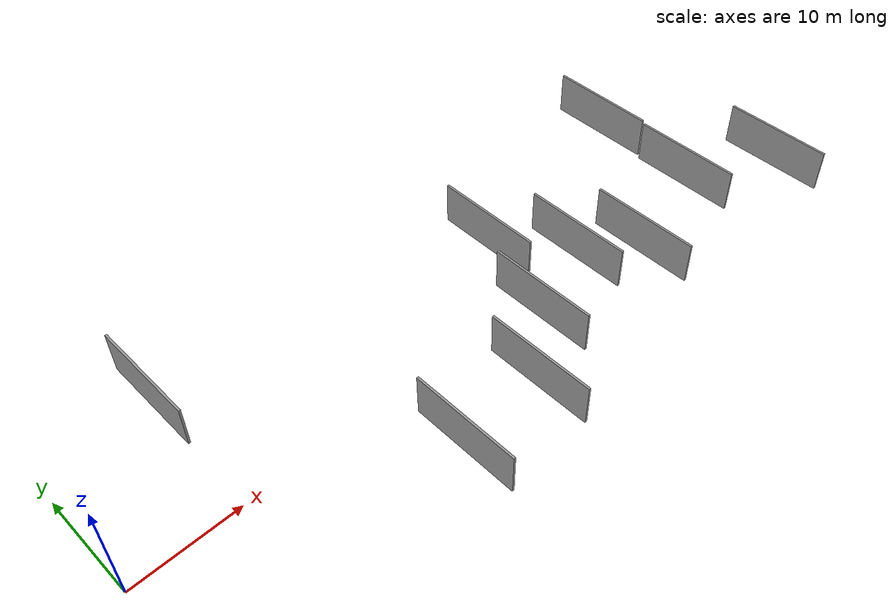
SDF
<sdf version="1.6">
 <world name="default">
  <scene>
   <sky><clouds><speed>12</speed></clouds></sky>
   <ambient>0.4 0.4 0.4 1</ambient>
   <background>0.7 0.7 0.7 1</background>
   <shadows>1</shadows>
  </scene>
  <gravity>0 0 -9.8066</gravity>
  <magnetic_field>6e-06 2.3e-05 -4.2e-05</magnetic_field>
  <physics default="0" name="default_physics" type="ode">
   <ode>
    <solver>
     <type>quick</type>
     <iters>10</iters>
     <sor>1.0</sor>
     <use_dynamic_moi_rescaling>0</use_dynamic_moi_rescaling>
    </solver>
    <constraints>
     <cfm>0</cfm>
     <erp>0.2</erp>
     <contact_max_correcting_vel>100</contact_max_correcting_vel>
     <contact_surface_layer>0.001</contact_surface_layer>
    </constraints>
   </ode>
   <max_step_size>0.004</max_step_size>
   <real_time_factor>1</real_time_factor>
   <real_time_update_rate>250</real_time_update_rate>
  </physics>
  <light name="sun" type="directional">
   <pose>0 0 10 0 0 0</pose>
   <diffuse>0.8 0.8 0.8 1</diffuse>
   <specular>0.2 0.2 0.2 1</specular>
   <attenuation>
    <range>1000</range>
    <constant>0.9</constant>
    <linear>0.01</linear>
    <quadratic>0.001</quadratic>
   </attenuation>
   <direction>-0.5 0.1 -0.9</direction>
  </light>
  <model name="grey_wall_1">
   <static>1</static>
   <pose>32.1849 -8.5395 2.5 0.000000 0.000000 1.570796</pose>
   <link name="link">
    <pose>0 0 2.00 0 0 0</pose>
    <collision name="collision"><geometry><box><size>10.00 0.2 4.00</size></box></geometry></collision>
    <visual name="visual">
     <cast_shadows>0</cast_shadows>
     <geometry><box><size>10.00 0.2 4.00</size></box></geometry>
     <material>
      <script>
       <uri>model://grey_wall/materials/scripts</uri>
       <uri>model://grey_wall/materials/textures</uri>
       <name>vrc/grey_wall</name>
      </script>
     </material>
    </visual>
   </link>
  </model>
  <model name="grey_wall_2">
   <static>1</static>
   <pose>23.8997 -8.9637 2.5 0.000000 0.000000 1.570796</pose>
   <link name="link">
    <pose>0 0 2.00 0 0 0</pose>
    <collision name="collision"><geometry><box><size>10.00 0.2 4.00</size></box></geometry></collision>
    <visual name="visual">
     <cast_shadows>0</cast_shadows>
     <geometry><box><size>10.00 0.2 4.00</size></box></geometry>
     <material>
      <script>
       <uri>model://grey_wall/materials/scripts</uri>
       <uri>model://grey_wall/materials/textures</uri>
       <name>vrc/grey_wall</name>
      </script>
     </material>
    </visual>
   </link>
  </model>
  <model name="grey_wall_3">
   <static>1</static>
   <pose>59.2602 -1.2913 2.5 0.000000 0.000000 1.570796</pose>
   <link name="link">
    <pose>0 0 2.00 0 0 0</pose>
    <collision name="collision"><geometry><box><size>10.00 0.2 4.00</size></box></geometry></collision>
    <visual name="visual">
     <cast_shadows>0</cast_shadows>
     <geometry><box><size>10.00 0.2 4.00</size></box></geometry>
     <material>
      <script>
       <uri>model://grey_wall/materials/scripts</uri>
       <uri>model://grey_wall/materials/textures</uri>
       <name>vrc/grey_wall</name>
      </script>
     </material>
    </visual>
   </link>
  </model>
  <model name="grey_wall_4">
   <static>1</static>
   <pose>9.6104 10.6160 2.5 0.000000 0.000000 1.570796</pose>
   <link name="link">
    <pose>0 0 2.00 0 0 0</pose>
    <collision name="collision"><geometry><box><size>10.00 0.2 4.00</size></box></geometry></collision>
    <visual name="visual">
     <cast_shadows>0</cast_shadows>
     <geometry><box><size>10.00 0.2 4.00</size></box></geometry>
     <material>
      <script>
       <uri>model://grey_wall/materials/scripts</uri>
       <uri>model://grey_wall/materials/textures</uri>
       <name>vrc/grey_wall</name>
      </script>
     </material>
    </visual>
   </link>
  </model>
  <model name="grey_wall_5">
   <static>1</static>
   <pose>67.4958 -5.3974 2.5 0.000000 0.000000 1.570796</pose>
   <link name="link">
    <pose>0 0 2.00 0 0 0</pose>
    <collision name="collision"><geometry><box><size>10.00 0.2 4.00</size></box></geometry></collision>
    <visual name="visual">
     <cast_shadows>0</cast_shadows>
     <geometry><box><size>10.00 0.2 4.00</size></box></geometry>
     <material>
      <script>
       <uri>model://grey_wall/materials/scripts</uri>
       <uri>model://grey_wall/materials/textures</uri>
       <name>vrc/grey_wall</name>
      </script>
     </material>
    </visual>
   </link>
  </model>
  <model name="grey_wall_6">
   <static>1</static>
   <pose>59.5702 9.1003 2.5 0.000000 0.000000 1.570796</pose>
   <link name="link">
    <pose>0 0 2.00 0 0 0</pose>
    <collision name="collision"><geometry><box><size>10.00 0.2 4.00</size></box></geometry></collision>
    <visual name="visual">
     <cast_shadows>0</cast_shadows>
     <geometry><box><size>10.00 0.2 4.00</size></box></geometry>
     <material>
      <script>
       <uri>model://grey_wall/materials/scripts</uri>
       <uri>model://grey_wall/materials/textures</uri>
       <name>vrc/grey_wall</name>
      </script>
     </material>
    </visual>
   </link>
  </model>
  <model name="grey_wall_7">
   <static>1</static>
   <pose>44.8753 -0.9208 2.5 0.000000 0.000000 1.570796</pose>
   <link name="link">
    <pose>0 0 2.00 0 0 0</pose>
    <collision name="collision"><geometry><box><size>10.00 0.2 4.00</size></box></geometry></collision>
    <visual name="visual">
     <cast_shadows>0</cast_shadows>
     <geometry><box><size>10.00 0.2 4.00</size></box></geometry>
     <material>
      <script>
       <uri>model://grey_wall/materials/scripts</uri>
       <uri>model://grey_wall/materials/textures</uri>
       <name>vrc/grey_wall</name>
      </script>
     </material>
    </visual>
   </link>
  </model>
  <model name="grey_wall_8">
   <static>1</static>
   <pose>49.4132 -4.4602 2.5 0.000000 0.000000 1.570796</pose>
   <link name="link">
    <pose>0 0 2.00 0 0 0</pose>
    <collision name="collision"><geometry><box><size>10.00 0.2 4.00</size></box></geometry></collision>
    <visual name="visual">
     <cast_shadows>0</cast_shadows>
     <geometry><box><size>10.00 0.2 4.00</size></box></geometry>
     <material>
      <script>
       <uri>model://grey_wall/materials/scripts</uri>
       <uri>model://grey_wall/materials/textures</uri>
       <name>vrc/grey_wall</name>
      </script>
     </material>
    </visual>
   </link>
  </model>
  <model name="grey_wall_9">
   <static>1</static>
   <pose>37.5693 -3.7170 2.5 0.000000 0.000000 1.570796</pose>
   <link name="link">
    <pose>0 0 2.00 0 0 0</pose>
    <collision name="collision"><geometry><box><size>10.00 0.2 4.00</size></box></geometry></collision>
    <visual name="visual">
     <cast_shadows>0</cast_shadows>
     <geometry><box><size>10.00 0.2 4.00</size></box></geometry>
     <material>
      <script>
       <uri>model://grey_wall/materials/scripts</uri>
       <uri>model://grey_wall/materials/textures</uri>
       <name>vrc/grey_wall</name>
      </script>
     </material>
    </visual>
   </link>
  </model>
  <model name="grey_wall_10">
   <static>1</static>
   <pose>40.2472 5.1165 2.5 0.000000 0.000000 1.570796</pose>
   <link name="link">
    <pose>0 0 2.00 0 0 0</pose>
    <collision name="collision"><geometry><box><size>10.00 0.2 4.00</size></box></geometry></collision>
    <visual name="visual">
     <cast_shadows>0</cast_shadows>
     <geometry><box><size>10.00 0.2 4.00</size></box></geometry>
     <material>
      <script>
       <uri>model://grey_wall/materials/scripts</uri>
       <uri>model://grey_wall/materials/textures</uri>
       <name>vrc/grey_wall</name>
      </script>
     </material>
    </visual>
   </link>
  </model>
 </world>
</sdf>
